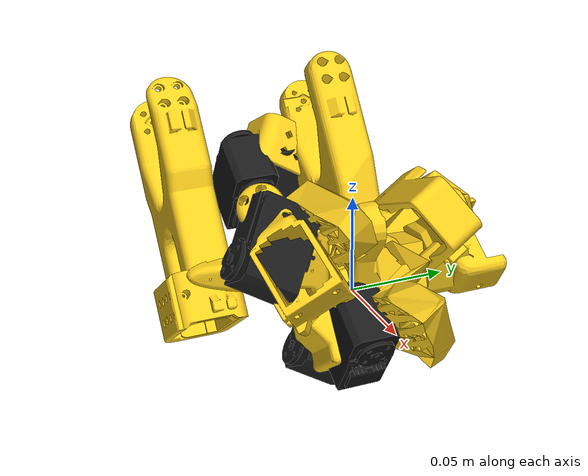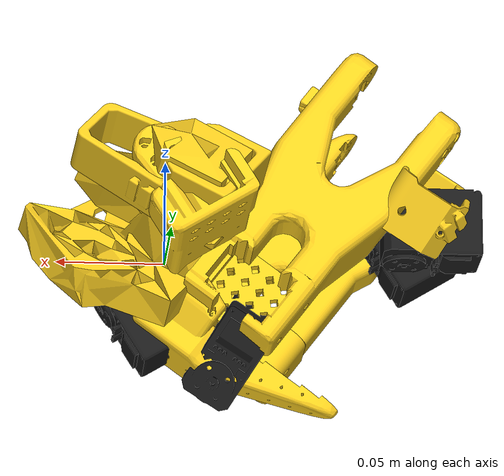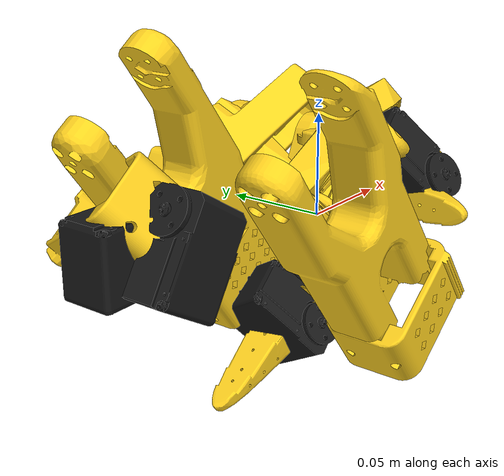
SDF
<?xml version="1.0" ?>
<sdf version="1.7">
  <model name="so101" canonical_body="base">
    <!-- BASE -->
    <link name="base">
      <inertial>
        <mass>0.147</mass>
        <pose>0.0137179 -0.0000519711 0.0334843 0 0 0</pose>
        <inertia>
          <ixx>0.000114686</ixx>
          <iyy>0.000136117</iyy>
          <izz>0.000130364</izz>
        </inertia>
      </inertial>
      <visual name="base_motor_holder_visual">
        <pose>-0.00636471 -0.0000994414 -0.0024 0.785398 0.785398 0.785398</pose>
        <geometry><mesh><uri>model://so101/assets/base_motor_holder_so101_v1.stl</uri></mesh></geometry>
        <material><ambient>1 0.82 0.12 1</ambient></material>
      </visual>
      <visual name="base_so101_visual">
        <pose>-0.00636471 -0.00000000897657 -0.0024 0.785398 0.785398 0.785398</pose>
        <geometry><mesh><uri>model://so101/assets/base_so101_v2.stl</uri></mesh></geometry>
        <material><ambient>1 0.82 0.12 1</ambient></material>
      </visual>
      <collision name="base_collision">
        <geometry><mesh><uri>model://so101/assets/base_so101_v2.stl</uri></mesh></geometry>
      </collision>
    </link>

    <!-- SHOULDER -->
    <link name="shoulder">
      <inertial>
        <mass>0.100006</mass>
        <pose>-0.0307604 -0.0000166727 -0.0252713 0 0 0</pose>
        <inertia>
          <ixx>0.00008375</ixx>
          <iyy>0.0000810403</iyy>
          <izz>0.0000239783</izz>
        </inertia>
      </inertial>
      <visual name="shoulder_v1_visual">
        <pose>-0.0303992 0.000422241 -0.0417 0.785398 0.785398 -0.785398</pose>
        <geometry><mesh><uri>model://so101/assets/sts3215_03a_v1.stl</uri></mesh></geometry>
        <material><ambient>0.1 0.1 0.1 1</ambient></material>
      </visual>
      <visual name="motor_holder_base_visual">
        <pose>-0.0675992 -0.000177759 0.0158499 0.785398 0.785398 -0.785398</pose>
        <geometry><mesh><uri>model://so101/assets/motor_holder_so101_base_v1.stl</uri></mesh></geometry>
        <material><ambient>1 0.82 0.12 1</ambient></material>
      </visual>
      <visual name="rotation_pitch_visual">
        <pose>0.0122008 0.0000222413 0.0464 0 -45 0</pose>
        <geometry><mesh><uri>model://so101/assets/rotation_pitch_so101_v1.stl</uri></mesh></geometry>
        <material><ambient>1 0.82 0.12 1</ambient></material>
      </visual>
      <collision name="shoulder_collision">
        <geometry><mesh><uri>model://so101/assets/sts3215_03a_v1.stl</uri></mesh></geometry>
      </collision>
    </link>

    <!-- UPPER ARM -->
    <link name="upper_arm">
      <inertial>
        <mass>0.103</mass>
        <pose>-0.0898471 -0.00838224 0.0184089 0 0 0</pose>
        <inertia>
          <ixx>0.0000408002</ixx>
          <iyy>0.000147318</iyy>
          <izz>0.000142487</izz>
        </inertia>
      </inertial>
      <visual name="shoulder_v1_3_visual">
        <pose>-0.11257 -0.0155 0.0187 0 -45 0</pose>
        <geometry><mesh><uri>model://so101/assets/sts3215_03a_v1.stl</uri></mesh></geometry>
        <material><ambient>0.1 0.1 0.1 1</ambient></material>
      </visual>
      <visual name="upper_arm_visual">
        <pose>-0.065085 0.012 0.0182 0 180 0</pose>
        <geometry><mesh><uri>model://so101/assets/upper_arm_so101_v1.stl</uri></mesh></geometry>
        <material><ambient>1 0.82 0.12 1</ambient></material>
      </visual>
      <collision name="upper_arm_collision">
        <geometry><mesh><uri>model://so101/assets/upper_arm_so101_v1.stl</uri></mesh></geometry>
      </collision>
    </link>

    <!-- LOWER ARM -->
    <link name="lower_arm">
      <inertial>
        <mass>0.104</mass>
        <pose>-0.0980701 0.00324376 0.0182831 0 0 0</pose>
        <inertia>
          <ixx>0.0000287438</ixx>
          <iyy>0.000159844</iyy>
          <izz>0.00014529</izz>
        </inertia>
      </inertial>
      <visual name="under_arm_visual">
        <pose>-0.0648499 -0.032 0.0182 0 180 0</pose>
        <geometry><mesh><uri>model://so101/assets/under_arm_so101_v1.stl</uri></mesh></geometry>
        <material><ambient>1 0.82 0.12 1</ambient></material>
      </visual>
      <visual name="motor_holder_wrist_visual">
        <pose>-0.0648499 -0.032 0.018 0 180 0</pose>
        <geometry><mesh><uri>model://so101/assets/motor_holder_so101_wrist_v1.stl</uri></mesh></geometry>
        <material><ambient>1 0.82 0.12 1</ambient></material>
      </visual>
      <visual name="shoulder_v1_4_visual">
        <pose>-0.1224 0.0052 0.0187 0 0 0</pose>
        <geometry><mesh><uri>model://so101/assets/sts3215_03a_v1.stl</uri></mesh></geometry>
        <material><ambient>0.1 0.1 0.1 1</ambient></material>
      </visual>
      <collision name="lower_arm_collision">
        <geometry><mesh><uri>model://so101/assets/under_arm_so101_v1.stl</uri></mesh></geometry>
      </collision>
    </link>

    <!-- WRIST -->
    <link name="wrist">
      <inertial>
        <mass>0.079</mass>
        <pose>-0.000103312 -0.0386143 0.0281156 0 0 0</pose>
        <inertia>
          <ixx>0.0000368263</ixx>
          <iyy>0.000025391</iyy>
          <izz>0.000021</izz>
        </inertia>
      </inertial>
      <visual name="shoulder_no_horn_visual">
        <pose>0 -0.0424 0.0306 0.785398 0.785398 -0.785398</pose>
        <geometry><mesh><uri>model://so101/assets/sts3215_03a_no_horn_v1.stl</uri></mesh></geometry>
        <material><ambient>0.1 0.1 0.1 1</ambient></material>
      </visual>
      <visual name="wrist_roll_pitch_visual">
        <pose>0 -0.028 0.0181 0.785398 -0.785398 -0.785398</pose>
        <geometry><mesh><uri>model://so101/assets/wrist_roll_pitch_so101_v2.stl</uri></mesh></geometry>
        <material><ambient>1 0.82 0.12 1</ambient></material>
      </visual>
      <collision name="wrist_collision">
        <geometry><mesh><uri>model://so101/assets/wrist_roll_pitch_so101_v2.stl</uri></mesh></geometry>
      </collision>
    </link>

    <!-- GRIPPER -->
    <link name="gripper">
      <inertial>
        <mass>0.087</mass>
        <pose>0.000213627 0.000245138 -0.025187 0 0 0</pose>
        <inertia>
          <ixx>0.0000275087</ixx>
          <iyy>0.0000433657</iyy>
          <izz>0.0000345059</izz>
        </inertia>
      </inertial>
      <visual name="shoulder_v1_5_visual">
        <pose>0.0077 0.0001 -0.0234 0 -45 0</pose>
        <geometry><mesh><uri>model://so101/assets/sts3215_03a_v1.stl</uri></mesh></geometry>
        <material><ambient>0.1 0.1 0.1 1</ambient></material>
      </visual>
      <visual name="wrist_roll_follower_visual">
        <pose>0 -0.000218214 0.000949706 0 180 0</pose>
        <geometry><mesh><uri>model://so101/assets/wrist_roll_follower_so101_v1.stl</uri></mesh></geometry>
        <material><ambient>1 0.82 0.12 1</ambient></material>
      </visual>
      <collision name="gripper_collision">
        <geometry><mesh><uri>model://so101/assets/sts3215_03a_v1.stl</uri></mesh></geometry>
      </collision>
    </link>

    <!-- MOVING JAW -->
    <link name="moving_jaw_so101_v1">
      <inertial>
        <mass>0.012</mass>
        <pose>-0.00157495 -0.0300244 0.0192755 0 0 0</pose>
        <inertia>
          <ixx>0.00000661427</ixx>
          <iyy>0.00000189032</iyy>
          <izz>0.00000528738</izz>
        </inertia>
      </inertial>
      <visual name="moving_jaw_visual">
        <pose>0 0 0.0189 0 0 0</pose>
        <geometry><mesh><uri>model://so101/assets/moving_jaw_so101_v1.stl</uri></mesh></geometry>
        <material><ambient>1 0.82 0.12 1</ambient></material>
      </visual>
      <collision name="moving_jaw_collision">
        <geometry><mesh><uri>model://so101/assets/moving_jaw_so101_v1.stl</uri></mesh></geometry>
      </collision>
    </link>

    <!-- JOINTS -->
    <joint name="shoulder_pan" type="revolute">
      <parent>base</parent>
      <child>shoulder</child>
      <origin xyz="0.0388353 -8.97657e-09 0.0624" rpy="0 0 0"/>
      <axis><xyz>0 0 1</xyz></axis>
      <limit lower="-1.91986" upper="1.91986" effort="3.35" velocity="1.0"/>
      <dynamics damping="0.60" friction="0.052"/>
    </joint>

    <joint name="shoulder_lift" type="revolute">
      <parent>shoulder</parent>
      <child>upper_arm</child>
      <origin xyz="-0.0303992 -0.0182778 -0.0542" rpy="0.785398 -0.785398 -0.785398"/>
      <axis><xyz>0 0 1</xyz></axis>
      <limit lower="-1.74533" upper="1.74533" effort="3.35" velocity="1.0"/>
      <dynamics damping="0.60" friction="0.052"/>
    </joint>

    <joint name="elbow_flex" type="revolute">
      <parent>upper_arm</parent>
      <child>lower_arm</child>
      <origin xyz="-0.11257 -0.028 0" rpy="0.785398 0 0.785398"/>
      <axis><xyz>0 0 1</xyz></axis>
      <limit lower="-1.69" upper="1.69" effort="3.35" velocity="1.0"/>
      <dynamics damping="0.60" friction="0.052"/>
    </joint>

    <joint name="wrist_flex" type="revolute">
      <parent>lower_arm</parent>
      <child>wrist</child>
      <origin xyz="-0.1349 0.0052 0" rpy="0.785398 0 -0.785398"/>
      <axis><xyz>0 0 1</xyz></axis>
      <limit lower="-1.65806" upper="1.65806" effort="3.35" velocity="1.0"/>
      <dynamics damping="0.60" friction="0.052"/>
    </joint>

    <joint name="wrist_roll" type="revolute">
      <parent>wrist</parent>
      <child>gripper</child>
      <origin xyz="0 -0.0611 0.0181" rpy="0.012 -0.012 0.707"/>
      <axis><xyz>0 0 1</xyz></axis>
      <limit lower="-2.74385" upper="2.84121" effort="3.35" velocity="1.0"/>
      <dynamics damping="0.60" friction="0.052"/>
    </joint>

    <joint name="gripper_joint" type="revolute">
      <parent>gripper</parent>
      <child>moving_jaw_so101_v1</child>
      <origin xyz="0.0202 0.0188 -0.0234" rpy="0.785398 0.785398 0"/>
      <axis><xyz>0 0 1</xyz></axis>
      <limit lower="-0.17453" upper="1.74533" effort="3.35" velocity="1.0"/>
      <dynamics damping="0.60" friction="0.052"/>
    </joint>

    <!-- PLUGINS DE CONTROL -->
    <plugin filename="ignition-gazebo-joint-position-controller-system" name="ignition::gazebo::systems::JointPositionController">
      <joint_name>shoulder_pan</joint_name>
    </plugin>
    <plugin filename="ignition-gazebo-joint-position-controller-system" name="ignition::gazebo::systems::JointPositionController">
      <joint_name>shoulder_lift</joint_name>
    </plugin>
    <plugin filename="ignition-gazebo-joint-position-controller-system" name="ignition::gazebo::systems::JointPositionController">
      <joint_name>elbow_flex</joint_name>
    </plugin>
    <plugin filename="ignition-gazebo-joint-position-controller-system" name="ignition::gazebo::systems::JointPositionController">
      <joint_name>wrist_flex</joint_name>
    </plugin>
    <plugin filename="ignition-gazebo-joint-position-controller-system" name="ignition::gazebo::systems::JointPositionController">
      <joint_name>wrist_roll</joint_name>
    </plugin>
    <plugin filename="ignition-gazebo-joint-position-controller-system" name="ignition::gazebo::systems::JointPositionController">
      <joint_name>gripper_joint</joint_name>
    </plugin>
  </model>
</sdf>
